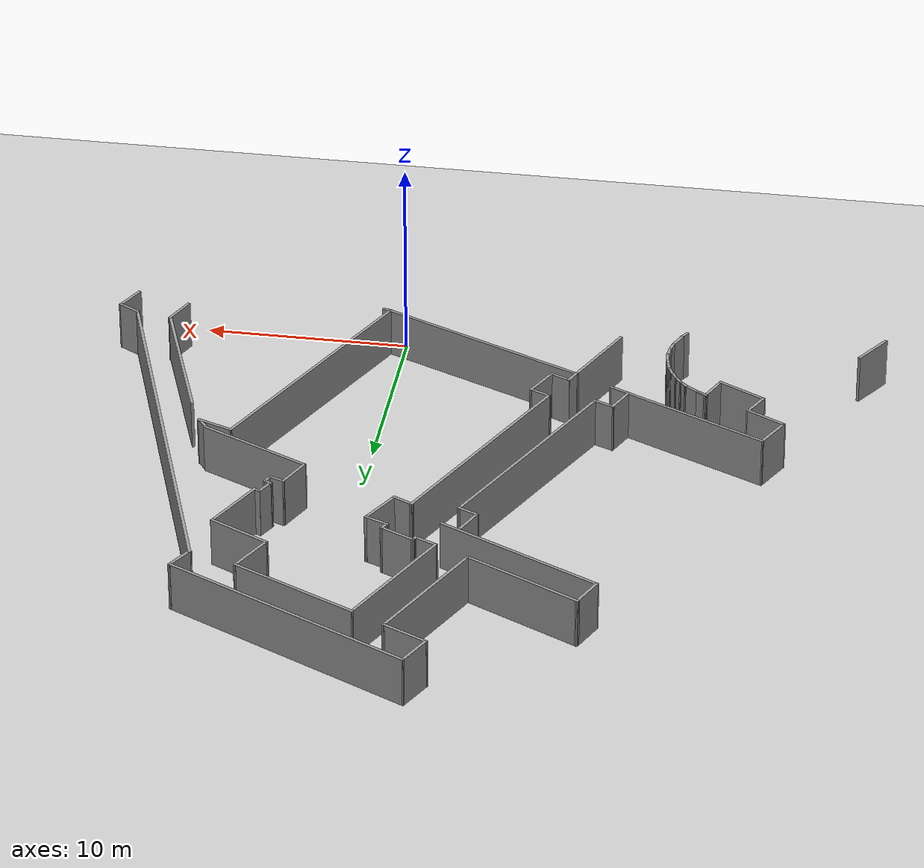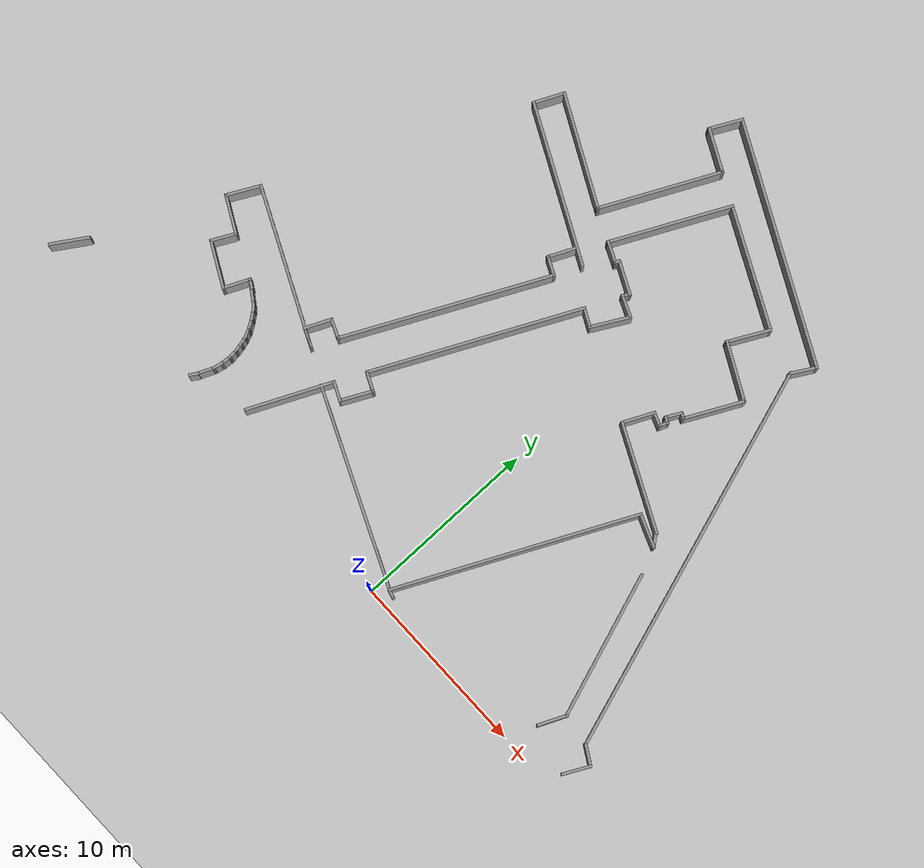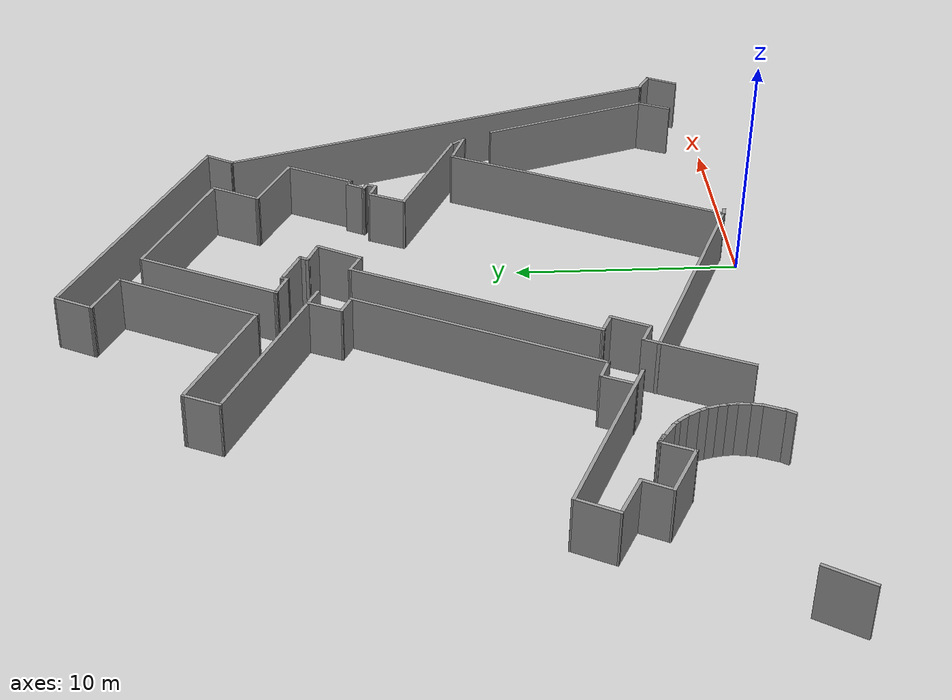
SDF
<sdf version="1.6">
 <world name="default">
  <model name="ground_plane">
   <static>1</static>
   <link name="link">
    <collision name="collision">
     <geometry><plane><normal>0 0 1</normal><size>100 100</size></plane></geometry>
     <surface><friction><ode><mu>100</mu><mu2>50</mu2></ode></friction></surface>
    </collision>
    <visual name="visual">
     <cast_shadows>0</cast_shadows>
     <geometry><plane><normal>0 0 1</normal><size>100 100</size></plane></geometry>
     <material>
      <script><uri>file://media/materials/scripts/gazebo.material</uri><name>Gazebo/Grey</name></script>
     </material>
    </visual>
   </link>
  </model>
  <model name="3rd_floor">
   <pose>-15.2077 -10.9942 0 0 -0 0</pose>
   <link name="Wall_100">
    <collision name="Wall_100_Collision">
     <geometry><box><size>0.976108 0.15 2.5</size></box></geometry>
     <pose>0 0 1.25 0 -0 0</pose>
    </collision>
    <visual name="Wall_100_Visual">
     <pose>0 0 1.25 0 -0 0</pose>
     <geometry><box><size>0.976108 0.15 2.5</size></box></geometry>
     <material>
      <script><uri>file://media/materials/scripts/gazebo.material</uri><name>Gazebo/Grey</name></script>
      <ambient>1 1 1 1</ambient>
     </material>
    </visual>
    <pose>19.0343 28.1609 0 0 0 -2.05279</pose>
   </link>
   <link name="Wall_101">
    <collision name="Wall_101_Collision">
     <geometry><box><size>0.451187 0.15 2.5</size></box></geometry>
     <pose>0 0 1.25 0 -0 0</pose>
    </collision>
    <visual name="Wall_101_Visual">
     <pose>0 0 1.25 0 -0 0</pose>
     <geometry><box><size>0.451187 0.15 2.5</size></box></geometry>
     <material>
      <script><uri>file://media/materials/scripts/gazebo.material</uri><name>Gazebo/Grey</name></script>
      <ambient>1 1 1 1</ambient>
     </material>
    </visual>
    <pose>18.9794 27.7315 0 0 0 -0.434533</pose>
   </link>
   <link name="Wall_102">
    <collision name="Wall_102_Collision">
     <geometry><box><size>0.575251 0.15 2.5</size></box></geometry>
     <pose>0 0 1.25 0 -0 0</pose>
    </collision>
    <visual name="Wall_102_Visual">
     <pose>0 0 1.25 0 -0 0</pose>
     <geometry><box><size>0.575251 0.15 2.5</size></box></geometry>
     <material>
      <script><uri>file://media/materials/scripts/gazebo.material</uri><name>Gazebo/Grey</name></script>
      <ambient>1 1 1 1</ambient>
     </material>
    </visual>
    <pose>19.035 27.4715 0 0 0 -1.9614</pose>
   </link>
   <link name="Wall_103">
    <collision name="Wall_103_Collision">
     <geometry><box><size>0.867422 0.15 2.5</size></box></geometry>
     <pose>0 0 1.25 0 -0 0</pose>
    </collision>
    <visual name="Wall_103_Visual">
     <pose>0 0 1.25 0 -0 0</pose>
     <geometry><box><size>0.867422 0.15 2.5</size></box></geometry>
     <material>
      <script><uri>file://media/materials/scripts/gazebo.material</uri><name>Gazebo/Grey</name></script>
      <ambient>1 1 1 1</ambient>
     </material>
    </visual>
    <pose>18.6187 27.4021 0 0 -0 2.77905</pose>
   </link>
   <link name="Wall_104">
    <collision name="Wall_104_Collision">
     <geometry><box><size>1.83663 0.15 2.5</size></box></geometry>
     <pose>0 0 1.25 0 -0 0</pose>
    </collision>
    <visual name="Wall_104_Visual">
     <pose>0 0 1.25 0 -0 0</pose>
     <geometry><box><size>1.83663 0.15 2.5</size></box></geometry>
     <material>
      <script><uri>file://media/materials/scripts/gazebo.material</uri><name>Gazebo/Grey</name></script>
      <ambient>1 1 1 1</ambient>
     </material>
    </visual>
    <pose>17.9248 26.766 0 0 0 -2.00991</pose>
   </link>
   <link name="Wall_105">
    <collision name="Wall_105_Collision">
     <geometry><box><size>5.97757 0.15 2.5</size></box></geometry>
     <pose>0 0 1.25 0 -0 0</pose>
    </collision>
    <visual name="Wall_105_Visual">
     <pose>0 0 1.25 0 -0 0</pose>
     <geometry><box><size>5.97757 0.15 2.5</size></box></geometry>
     <material>
      <script><uri>file://media/materials/scripts/gazebo.material</uri><name>Gazebo/Grey</name></script>
      <ambient>1 1 1 1</ambient>
     </material>
    </visual>
    <pose>20.1971 24.7502 0 0 0 -0.444326</pose>
   </link>
   <link name="Wall_471">
    <collision name="Wall_471_Collision">
     <geometry><box><size>6.6762 0.15 2.5</size></box></geometry>
     <pose>0 0 1.25 0 -0 0</pose>
    </collision>
    <visual name="Wall_471_Visual">
     <pose>0 0 1.25 0 -0 0</pose>
     <geometry><box><size>6.6762 0.15 2.5</size></box></geometry>
     <material>
      <script><uri>file://media/materials/scripts/gazebo.material</uri><name>Gazebo/Grey</name></script>
      <ambient>1 1 1 1</ambient>
     </material>
    </visual>
    <pose>11.7969 34.5955 0 0 0 -2.02918</pose>
   </link>
   <link name="Wall_472">
    <collision name="Wall_472_Collision">
     <geometry><box><size>1.25496 0.15 2.5</size></box></geometry>
     <pose>0 0 1.25 0 -0 0</pose>
    </collision>
    <visual name="Wall_472_Visual">
     <pose>0 0 1.25 0 -0 0</pose>
     <geometry><box><size>1.25496 0.15 2.5</size></box></geometry>
     <material>
      <script><uri>file://media/materials/scripts/gazebo.material</uri><name>Gazebo/Grey</name></script>
      <ambient>1 1 1 1</ambient>
     </material>
    </visual>
    <pose>10.8587 31.4468 0 0 0 -0.414507</pose>
   </link>
   <link name="Wall_473">
    <collision name="Wall_473_Collision">
     <geometry><box><size>0.36786 0.15 2.5</size></box></geometry>
     <pose>0 0 1.25 0 -0 0</pose>
    </collision>
    <visual name="Wall_473_Visual">
     <pose>0 0 1.25 0 -0 0</pose>
     <geometry><box><size>0.36786 0.15 2.5</size></box></geometry>
     <material>
      <script><uri>file://media/materials/scripts/gazebo.material</uri><name>Gazebo/Grey</name></script>
      <ambient>1 1 1 1</ambient>
     </material>
    </visual>
    <pose>11.4048 31.3254 0 0 -0 1.19029</pose>
   </link>
   <link name="Wall_474">
    <collision name="Wall_474_Collision">
     <geometry><box><size>1.91369 0.15 2.5</size></box></geometry>
     <pose>0 0 1.25 0 -0 0</pose>
    </collision>
    <visual name="Wall_474_Visual">
     <pose>0 0 1.25 0 -0 0</pose>
     <geometry><box><size>1.91369 0.15 2.5</size></box></geometry>
     <material>
      <script><uri>file://media/materials/scripts/gazebo.material</uri><name>Gazebo/Grey</name></script>
      <ambient>1 1 1 1</ambient>
     </material>
    </visual>
    <pose>12.2424 31.0494 0 0 0 -0.441999</pose>
   </link>
   <link name="Wall_475">
    <collision name="Wall_475_Collision">
     <geometry><box><size>0.514278 0.15 2.5</size></box></geometry>
     <pose>0 0 1.25 0 -0 0</pose>
    </collision>
    <visual name="Wall_475_Visual">
     <pose>0 0 1.25 0 -0 0</pose>
     <geometry><box><size>0.514278 0.15 2.5</size></box></geometry>
     <material>
      <script><uri>file://media/materials/scripts/gazebo.material</uri><name>Gazebo/Grey</name></script>
      <ambient>1 1 1 1</ambient>
     </material>
    </visual>
    <pose>12.9501 30.5134 0 0 0 -2.08355</pose>
   </link>
   <link name="Wall_476">
    <collision name="Wall_476_Collision">
     <geometry><box><size>1.29211 0.15 2.5</size></box></geometry>
     <pose>0 0 1.25 0 -0 0</pose>
    </collision>
    <visual name="Wall_476_Visual">
     <pose>0 0 1.25 0 -0 0</pose>
     <geometry><box><size>1.29211 0.15 2.5</size></box></geometry>
     <material>
      <script><uri>file://media/materials/scripts/gazebo.material</uri><name>Gazebo/Grey</name></script>
      <ambient>1 1 1 1</ambient>
     </material>
    </visual>
    <pose>13.3767 30.1322 0 0 0 -0.400241</pose>
   </link>
   <link name="Wall_477">
    <collision name="Wall_477_Collision">
     <geometry><box><size>2.25026 0.15 2.5</size></box></geometry>
     <pose>0 0 1.25 0 -0 0</pose>
    </collision>
    <visual name="Wall_477_Visual">
     <pose>0 0 1.25 0 -0 0</pose>
     <geometry><box><size>2.25026 0.15 2.5</size></box></geometry>
     <material>
      <script><uri>file://media/materials/scripts/gazebo.material</uri><name>Gazebo/Grey</name></script>
      <ambient>1 1 1 1</ambient>
     </material>
    </visual>
    <pose>13.4071 28.9892 0 0 0 -2.07298</pose>
   </link>
   <link name="Wall_478">
    <collision name="Wall_478_Collision">
     <geometry><box><size>1.14508 0.15 2.5</size></box></geometry>
     <pose>0 0 1.25 0 -0 0</pose>
    </collision>
    <visual name="Wall_478_Visual">
     <pose>0 0 1.25 0 -0 0</pose>
     <geometry><box><size>1.14508 0.15 2.5</size></box></geometry>
     <material>
      <script><uri>file://media/materials/scripts/gazebo.material</uri><name>Gazebo/Grey</name></script>
      <ambient>1 1 1 1</ambient>
     </material>
    </visual>
    <pose>12.4566 28.2913 0 0 -0 2.67794</pose>
   </link>
   <link name="Wall_480">
    <collision name="Wall_480_Collision">
     <geometry><box><size>11.58 0.15 2.5</size></box></geometry>
     <pose>0 0 1.25 0 -0 0</pose>
    </collision>
    <visual name="Wall_480_Visual">
     <pose>0 0 1.25 0 -0 0</pose>
     <geometry><box><size>11.58 0.15 2.5</size></box></geometry>
     <material>
      <script><uri>file://media/materials/scripts/gazebo.material</uri><name>Gazebo/Grey</name></script>
      <ambient>1 1 1 1</ambient>
     </material>
    </visual>
    <pose>9.50935 23.3757 0 0 0 -2.024</pose>
   </link>
   <link name="Wall_481">
    <collision name="Wall_481_Collision">
     <geometry><box><size>1.15737 0.15 2.5</size></box></geometry>
     <pose>0 0 1.25 0 -0 0</pose>
    </collision>
    <visual name="Wall_481_Visual">
     <pose>0 0 1.25 0 -0 0</pose>
     <geometry><box><size>1.15737 0.15 2.5</size></box></geometry>
     <material>
      <script><uri>file://media/materials/scripts/gazebo.material</uri><name>Gazebo/Grey</name></script>
      <ambient>1 1 1 1</ambient>
     </material>
    </visual>
    <pose>7.46438 18.0266 0 0 0 -0.432408</pose>
   </link>
   <link name="Wall_482">
    <collision name="Wall_482_Collision">
     <geometry><box><size>1.88057 0.15 2.5</size></box></geometry>
     <pose>0 0 1.25 0 -0 0</pose>
    </collision>
    <visual name="Wall_482_Visual">
     <pose>0 0 1.25 0 -0 0</pose>
     <geometry><box><size>1.88057 0.15 2.5</size></box></geometry>
     <material>
      <script><uri>file://media/materials/scripts/gazebo.material</uri><name>Gazebo/Grey</name></script>
      <ambient>1 1 1 1</ambient>
     </material>
    </visual>
    <pose>7.53474 17.0416 0 0 0 -2.03444</pose>
   </link>
   <link name="Wall_483">
    <collision name="Wall_483_Collision">
     <geometry><box><size>1.1299 0.15 2.5</size></box></geometry>
     <pose>0 0 1.25 0 -0 0</pose>
    </collision>
    <visual name="Wall_483_Visual">
     <pose>0 0 1.25 0 -0 0</pose>
     <geometry><box><size>1.1299 0.15 2.5</size></box></geometry>
     <material>
      <script><uri>file://media/materials/scripts/gazebo.material</uri><name>Gazebo/Grey</name></script>
      <ambient>1 1 1 1</ambient>
     </material>
    </visual>
    <pose>6.70329 16.4738 0 0 -0 2.70736</pose>
   </link>
   <link name="Wall_485">
    <collision name="Wall_485_Collision">
     <geometry><box><size>4.80153 0.15 2.5</size></box></geometry>
     <pose>0 0 1.25 0 -0 0</pose>
    </collision>
    <visual name="Wall_485_Visual">
     <pose>0 0 1.25 0 -0 0</pose>
     <geometry><box><size>4.80153 0.15 2.5</size></box></geometry>
     <material>
      <script><uri>file://media/materials/scripts/gazebo.material</uri><name>Gazebo/Grey</name></script>
      <ambient>1 1 1 1</ambient>
     </material>
    </visual>
    <pose>5.26754 14.5719 0 0 0 -2.00697</pose>
   </link>
   <link name="Wall_487">
    <collision name="Wall_487_Collision">
     <geometry><box><size>10.9993 0.15 2.5</size></box></geometry>
     <pose>0 0 1.25 0 -0 0</pose>
    </collision>
    <visual name="Wall_487_Visual">
     <pose>0 0 1.25 0 -0 0</pose>
     <geometry><box><size>10.9993 0.15 2.5</size></box></geometry>
     <material>
      <script><uri>file://media/materials/scripts/gazebo.material</uri><name>Gazebo/Grey</name></script>
      <ambient>1 1 1 1</ambient>
     </material>
    </visual>
    <pose>10.9112 13.8828 0 0 0 -0.416814</pose>
   </link>
   <link name="Wall_489">
    <collision name="Wall_489_Collision">
     <geometry><box><size>13.3258 0.15 2.5</size></box></geometry>
     <pose>0 0 1.25 0 -0 0</pose>
    </collision>
    <visual name="Wall_489_Visual">
     <pose>0 0 1.25 0 -0 0</pose>
     <geometry><box><size>13.3258 0.15 2.5</size></box></geometry>
     <material>
      <script><uri>file://media/materials/scripts/gazebo.material</uri><name>Gazebo/Grey</name></script>
      <ambient>1 1 1 1</ambient>
     </material>
    </visual>
    <pose>18.7301 17.6221 0 0 -0 1.12195</pose>
   </link>
   <link name="Wall_490">
    <collision name="Wall_490_Collision">
     <geometry><box><size>1.92051 0.15 2.5</size></box></geometry>
     <pose>0 0 1.25 0 -0 0</pose>
    </collision>
    <visual name="Wall_490_Visual">
     <pose>0 0 1.25 0 -0 0</pose>
     <geometry><box><size>1.92051 0.15 2.5</size></box></geometry>
     <material>
      <script><uri>file://media/materials/scripts/gazebo.material</uri><name>Gazebo/Grey</name></script>
      <ambient>1 1 1 1</ambient>
     </material>
    </visual>
    <pose>22.4155 23.2408 0 0 0 -0.365747</pose>
   </link>
   <link name="Wall_491">
    <collision name="Wall_491_Collision">
     <geometry><box><size>0.77634 0.15 2.5</size></box></geometry>
     <pose>0 0 1.25 0 -0 0</pose>
    </collision>
    <visual name="Wall_491_Visual">
     <pose>0 0 1.25 0 -0 0</pose>
     <geometry><box><size>0.77634 0.15 2.5</size></box></geometry>
     <material>
      <script><uri>file://media/materials/scripts/gazebo.material</uri><name>Gazebo/Grey</name></script>
      <ambient>1 1 1 1</ambient>
     </material>
    </visual>
    <pose>23.0487 23.1705 0 0 -0 2.23677</pose>
   </link>
   <link name="Wall_493">
    <collision name="Wall_493_Collision">
     <geometry><box><size>8.12179 0.15 2.5</size></box></geometry>
     <pose>0 0 1.25 0 -0 0</pose>
    </collision>
    <visual name="Wall_493_Visual">
     <pose>0 0 1.25 0 -0 0</pose>
     <geometry><box><size>8.12179 0.15 2.5</size></box></geometry>
     <material>
      <script><uri>file://media/materials/scripts/gazebo.material</uri><name>Gazebo/Grey</name></script>
      <ambient>1 1 1 1</ambient>
     </material>
    </visual>
    <pose>25.2037 17.7554 0 0 0 -1.23448</pose>
   </link>
   <link name="Wall_494">
    <collision name="Wall_494_Collision">
     <geometry><box><size>1.65639 0.15 2.5</size></box></geometry>
     <pose>0 0 1.25 0 -0 0</pose>
    </collision>
    <visual name="Wall_494_Visual">
     <pose>0 0 1.25 0 -0 0</pose>
     <geometry><box><size>1.65639 0.15 2.5</size></box></geometry>
     <material>
      <script><uri>file://media/materials/scripts/gazebo.material</uri><name>Gazebo/Grey</name></script>
      <ambient>1 1 1 1</ambient>
     </material>
    </visual>
    <pose>26.2131 13.3045 0 0 0 -1.98902</pose>
   </link>
   <link name="Wall_498">
    <collision name="Wall_498_Collision">
     <geometry><box><size>0.5 0.15 2.5</size></box></geometry>
     <pose>0 0 1.25 0 -0 0</pose>
    </collision>
    <visual name="Wall_498_Visual">
     <pose>0 0 1.25 0 -0 0</pose>
     <geometry><box><size>0.5 0.15 2.5</size></box></geometry>
     <material>
      <script><uri>file://media/materials/scripts/gazebo.material</uri><name>Gazebo/Grey</name></script>
      <ambient>1 1 1 1</ambient>
     </material>
    </visual>
    <pose>16.0404 11.6282 0 0 0 -0.261799</pose>
   </link>
   <link name="Wall_5">
    <collision name="Wall_5_Collision">
     <geometry><box><size>13.2713 0.15 2.5</size></box></geometry>
     <pose>0 0 1.25 0 -0 0</pose>
    </collision>
    <visual name="Wall_5_Visual">
     <pose>0 0 1.25 0 -0 0</pose>
     <geometry><box><size>13.2713 0.15 2.5</size></box></geometry>
     <material>
      <script><uri>file://media/materials/scripts/gazebo.material</uri><name>Gazebo/Grey</name></script>
      <ambient>1 1 1 1</ambient>
     </material>
    </visual>
    <pose>16.2399 37.9944 0 0 0 -0.455255</pose>
   </link>
   <link name="Wall_556">
    <collision name="Wall_556_Collision">
     <geometry><box><size>0.583143 0.15 2.5</size></box></geometry>
     <pose>0 0 1.25 0 -0 0</pose>
    </collision>
    <visual name="Wall_556_Visual">
     <pose>0 0 1.25 0 -0 0</pose>
     <geometry><box><size>0.583143 0.15 2.5</size></box></geometry>
     <material>
      <script><uri>file://media/materials/scripts/gazebo.material</uri><name>Gazebo/Grey</name></script>
      <ambient>1 1 1 1</ambient>
     </material>
    </visual>
    <pose>-0.260611 16.9448 0 0 -0 2.63587</pose>
   </link>
   <link name="Wall_557">
    <collision name="Wall_557_Collision">
     <geometry><box><size>1.39544 0.15 2.5</size></box></geometry>
     <pose>0 0 1.25 0 -0 0</pose>
    </collision>
    <visual name="Wall_557_Visual">
     <pose>0 0 1.25 0 -0 0</pose>
     <geometry><box><size>1.39544 0.15 2.5</size></box></geometry>
     <material>
      <script><uri>file://media/materials/scripts/gazebo.material</uri><name>Gazebo/Grey</name></script>
      <ambient>1 1 1 1</ambient>
     </material>
    </visual>
    <pose>0.064531 16.6991 0 0 0 -0.598149</pose>
   </link>
   <link name="Wall_558">
    <collision name="Wall_558_Collision">
     <geometry><box><size>0.5 0.15 2.5</size></box></geometry>
     <pose>0 0 1.25 0 -0 0</pose>
    </collision>
    <visual name="Wall_558_Visual">
     <pose>0 0 1.25 0 -0 0</pose>
     <geometry><box><size>0.5 0.15 2.5</size></box></geometry>
     <material>
      <script><uri>file://media/materials/scripts/gazebo.material</uri><name>Gazebo/Grey</name></script>
      <ambient>1 1 1 1</ambient>
     </material>
    </visual>
    <pose>0.702878 16.2247 0 0 0 -0.785398</pose>
   </link>
   <link name="Wall_559">
    <collision name="Wall_559_Collision">
     <geometry><box><size>0.594545 0.15 2.5</size></box></geometry>
     <pose>0 0 1.25 0 -0 0</pose>
    </collision>
    <visual name="Wall_559_Visual">
     <pose>0 0 1.25 0 -0 0</pose>
     <geometry><box><size>0.594545 0.15 2.5</size></box></geometry>
     <material>
      <script><uri>file://media/materials/scripts/gazebo.material</uri><name>Gazebo/Grey</name></script>
      <ambient>1 1 1 1</ambient>
     </material>
    </visual>
    <pose>0.963748 15.926 0 0 0 -0.905965</pose>
   </link>
   <link name="Wall_560">
    <collision name="Wall_560_Collision">
     <geometry><box><size>0.727102 0.15 2.5</size></box></geometry>
     <pose>0 0 1.25 0 -0 0</pose>
    </collision>
    <visual name="Wall_560_Visual">
     <pose>0 0 1.25 0 -0 0</pose>
     <geometry><box><size>0.727102 0.15 2.5</size></box></geometry>
     <material>
      <script><uri>file://media/materials/scripts/gazebo.material</uri><name>Gazebo/Grey</name></script>
      <ambient>1 1 1 1</ambient>
     </material>
    </visual>
    <pose>1.2521 15.5053 0 0 0 -1.01914</pose>
   </link>
   <link name="Wall_561">
    <collision name="Wall_561_Collision">
     <geometry><box><size>0.569983 0.15 2.5</size></box></geometry>
     <pose>0 0 1.25 0 -0 0</pose>
    </collision>
    <visual name="Wall_561_Visual">
     <pose>0 0 1.25 0 -0 0</pose>
     <geometry><box><size>0.569983 0.15 2.5</size></box></geometry>
     <material>
      <script><uri>file://media/materials/scripts/gazebo.material</uri><name>Gazebo/Grey</name></script>
      <ambient>1 1 1 1</ambient>
     </material>
    </visual>
    <pose>1.48651 15.0667 0 0 0 -1.16354</pose>
   </link>
   <link name="Wall_562">
    <collision name="Wall_562_Collision">
     <geometry><box><size>0.559227 0.15 2.5</size></box></geometry>
     <pose>0 0 1.25 0 -0 0</pose>
    </collision>
    <visual name="Wall_562_Visual">
     <pose>0 0 1.25 0 -0 0</pose>
     <geometry><box><size>0.559227 0.15 2.5</size></box></geometry>
     <material>
      <script><uri>file://media/materials/scripts/gazebo.material</uri><name>Gazebo/Grey</name></script>
      <ambient>1 1 1 1</ambient>
     </material>
    </visual>
    <pose>1.62639 14.6773 0 0 0 -1.28996</pose>
   </link>
   <link name="Wall_564">
    <collision name="Wall_564_Collision">
     <geometry><box><size>0.561716 0.15 2.5</size></box></geometry>
     <pose>0 0 1.25 0 -0 0</pose>
    </collision>
    <visual name="Wall_564_Visual">
     <pose>0 0 1.25 0 -0 0</pose>
     <geometry><box><size>0.561716 0.15 2.5</size></box></geometry>
     <material>
      <script><uri>file://media/materials/scripts/gazebo.material</uri><name>Gazebo/Grey</name></script>
      <ambient>1 1 1 1</ambient>
     </material>
    </visual>
    <pose>1.7182 14.2779 0 0 0 -1.39948</pose>
   </link>
   <link name="Wall_565">
    <collision name="Wall_565_Collision">
     <geometry><box><size>0.5719 0.15 2.5</size></box></geometry>
     <pose>0 0 1.25 0 -0 0</pose>
    </collision>
    <visual name="Wall_565_Visual">
     <pose>0 0 1.25 0 -0 0</pose>
     <geometry><box><size>0.5719 0.15 2.5</size></box></geometry>
     <material>
      <script><uri>file://media/materials/scripts/gazebo.material</uri><name>Gazebo/Grey</name></script>
      <ambient>1 1 1 1</ambient>
     </material>
    </visual>
    <pose>1.77329 13.865 0 0 0 -1.47585</pose>
   </link>
   <link name="Wall_566">
    <collision name="Wall_566_Collision">
     <geometry><box><size>0.672398 0.15 2.5</size></box></geometry>
     <pose>0 0 1.25 0 -0 0</pose>
    </collision>
    <visual name="Wall_566_Visual">
     <pose>0 0 1.25 0 -0 0</pose>
     <geometry><box><size>0.672398 0.15 2.5</size></box></geometry>
     <material>
      <script><uri>file://media/materials/scripts/gazebo.material</uri><name>Gazebo/Grey</name></script>
      <ambient>1 1 1 1</ambient>
     </material>
    </visual>
    <pose>1.76829 13.395 0 0 0 -1.66665</pose>
   </link>
   <link name="Wall_567">
    <collision name="Wall_567_Collision">
     <geometry><box><size>0.610977 0.15 2.5</size></box></geometry>
     <pose>0 0 1.25 0 -0 0</pose>
    </collision>
    <visual name="Wall_567_Visual">
     <pose>0 0 1.25 0 -0 0</pose>
     <geometry><box><size>0.610977 0.15 2.5</size></box></geometry>
     <material>
      <script><uri>file://media/materials/scripts/gazebo.material</uri><name>Gazebo/Grey</name></script>
      <ambient>1 1 1 1</ambient>
     </material>
    </visual>
    <pose>1.69329 12.91 0 0 0 -1.78947</pose>
   </link>
   <link name="Wall_568">
    <collision name="Wall_568_Collision">
     <geometry><box><size>0.982586 0.15 2.5</size></box></geometry>
     <pose>0 0 1.25 0 -0 0</pose>
    </collision>
    <visual name="Wall_568_Visual">
     <pose>0 0 1.25 0 -0 0</pose>
     <geometry><box><size>0.982586 0.15 2.5</size></box></geometry>
     <material>
      <script><uri>file://media/materials/scripts/gazebo.material</uri><name>Gazebo/Grey</name></script>
      <ambient>1 1 1 1</ambient>
     </material>
    </visual>
    <pose>1.47329 12.305 0 0 0 -1.99146</pose>
   </link>
   <link name="Wall_57">
    <collision name="Wall_57_Collision">
     <geometry><box><size>1.88222 0.15 2.5</size></box></geometry>
     <pose>0 0 1.25 0 -0 0</pose>
    </collision>
    <visual name="Wall_57_Visual">
     <pose>0 0 1.25 0 -0 0</pose>
     <geometry><box><size>1.88222 0.15 2.5</size></box></geometry>
     <material>
      <script><uri>file://media/materials/scripts/gazebo.material</uri><name>Gazebo/Grey</name></script>
      <ambient>1 1 1 1</ambient>
     </material>
    </visual>
    <pose>9.95267 40.1081 0 0 0 -2.04403</pose>
   </link>
   <link name="Wall_570">
    <collision name="Wall_570_Collision">
     <geometry><box><size>0.519028 0.15 2.5</size></box></geometry>
     <pose>0 0 1.25 0 -0 0</pose>
    </collision>
    <visual name="Wall_570_Visual">
     <pose>0 0 1.25 0 -0 0</pose>
     <geometry><box><size>0.519028 0.15 2.5</size></box></geometry>
     <material>
      <script><uri>file://media/materials/scripts/gazebo.material</uri><name>Gazebo/Grey</name></script>
      <ambient>1 1 1 1</ambient>
     </material>
    </visual>
    <pose>1.20117 11.7283 0 0 0 -2.17187</pose>
   </link>
   <link name="Wall_58">
    <collision name="Wall_58_Collision">
     <geometry><box><size>2.45289 0.15 2.5</size></box></geometry>
     <pose>0 0 1.25 0 -0 0</pose>
    </collision>
    <visual name="Wall_58_Visual">
     <pose>0 0 1.25 0 -0 0</pose>
     <geometry><box><size>2.45289 0.15 2.5</size></box></geometry>
     <material>
      <script><uri>file://media/materials/scripts/gazebo.material</uri><name>Gazebo/Grey</name></script>
      <ambient>1 1 1 1</ambient>
     </material>
    </visual>
    <pose>10.5938 38.8344 0 0 0 -0.451929</pose>
   </link>
   <link name="Wall_59">
    <collision name="Wall_59_Collision">
     <geometry><box><size>6.71655 0.15 2.5</size></box></geometry>
     <pose>0 0 1.25 0 -0 0</pose>
    </collision>
    <visual name="Wall_59_Visual">
     <pose>0 0 1.25 0 -0 0</pose>
     <geometry><box><size>6.71655 0.15 2.5</size></box></geometry>
     <material>
      <script><uri>file://media/materials/scripts/gazebo.material</uri><name>Gazebo/Grey</name></script>
      <ambient>1 1 1 1</ambient>
     </material>
    </visual>
    <pose>10.1814 35.3849 0 0 0 -2.02759</pose>
   </link>
   <link name="Wall_6">
    <collision name="Wall_6_Collision">
     <geometry><box><size>1.5 0.15 2.5</size></box></geometry>
     <pose>0 0 1.25 0 -0 0</pose>
    </collision>
    <visual name="Wall_6_Visual">
     <pose>0 0 1.25 0 -0 0</pose>
     <geometry><box><size>1.5 0.15 2.5</size></box></geometry>
     <material>
      <script><uri>file://media/materials/scripts/gazebo.material</uri><name>Gazebo/Grey</name></script>
      <ambient>1 1 1 1</ambient>
     </material>
    </visual>
    <pose>21.7948 34.5252 0 0 0 -2.0944</pose>
   </link>
   <link name="Wall_60">
    <collision name="Wall_60_Collision">
     <geometry><box><size>6.23966 0.15 2.5</size></box></geometry>
     <pose>0 0 1.25 0 -0 0</pose>
    </collision>
    <visual name="Wall_60_Visual">
     <pose>0 0 1.25 0 -0 0</pose>
     <geometry><box><size>6.23966 0.15 2.5</size></box></geometry>
     <material>
      <script><uri>file://media/materials/scripts/gazebo.material</uri><name>Gazebo/Grey</name></script>
      <ambient>1 1 1 1</ambient>
     </material>
    </visual>
    <pose>6.00788 33.7959 0 0 -0 2.67942</pose>
   </link>
   <link name="Wall_61">
    <collision name="Wall_61_Collision">
     <geometry><box><size>1.76974 0.15 2.5</size></box></geometry>
     <pose>0 0 1.25 0 -0 0</pose>
    </collision>
    <visual name="Wall_61_Visual">
     <pose>0 0 1.25 0 -0 0</pose>
     <geometry><box><size>1.76974 0.15 2.5</size></box></geometry>
     <material>
      <script><uri>file://media/materials/scripts/gazebo.material</uri><name>Gazebo/Grey</name></script>
      <ambient>1 1 1 1</ambient>
     </material>
    </visual>
    <pose>2.94056 34.4194 0 0 0 -2.00667</pose>
   </link>
   <link name="Wall_63">
    <collision name="Wall_63_Collision">
     <geometry><box><size>8.76598 0.15 2.5</size></box></geometry>
     <pose>0 0 1.25 0 -0 0</pose>
    </collision>
    <visual name="Wall_63_Visual">
     <pose>0 0 1.25 0 -0 0</pose>
     <geometry><box><size>8.76598 0.15 2.5</size></box></geometry>
     <material>
      <script><uri>file://media/materials/scripts/gazebo.material</uri><name>Gazebo/Grey</name></script>
      <ambient>1 1 1 1</ambient>
     </material>
    </visual>
    <pose>6.47012 31.7958 0 0 0 -0.454051</pose>
   </link>
   <link name="Wall_65">
    <collision name="Wall_65_Collision">
     <geometry><box><size>1.66105 0.15 2.5</size></box></geometry>
     <pose>0 0 1.25 0 -0 0</pose>
    </collision>
    <visual name="Wall_65_Visual">
     <pose>0 0 1.25 0 -0 0</pose>
     <geometry><box><size>1.66105 0.15 2.5</size></box></geometry>
     <material>
      <script><uri>file://media/materials/scripts/gazebo.material</uri><name>Gazebo/Grey</name></script>
      <ambient>1 1 1 1</ambient>
     </material>
    </visual>
    <pose>9.18072 29.6072 0 0 0 -2.0032</pose>
   </link>
   <link name="Wall_66">
    <collision name="Wall_66_Collision">
     <geometry><box><size>1.12554 0.15 2.5</size></box></geometry>
     <pose>0 0 1.25 0 -0 0</pose>
    </collision>
    <visual name="Wall_66_Visual">
     <pose>0 0 1.25 0 -0 0</pose>
     <geometry><box><size>1.12554 0.15 2.5</size></box></geometry>
     <material>
      <script><uri>file://media/materials/scripts/gazebo.material</uri><name>Gazebo/Grey</name></script>
      <ambient>1 1 1 1</ambient>
     </material>
    </visual>
    <pose>9.30384 28.7102 0 0 0 -0.44752</pose>
   </link>
   <link name="Wall_67">
    <collision name="Wall_67_Collision">
     <geometry><box><size>11.4776 0.15 2.5</size></box></geometry>
     <pose>0 0 1.25 0 -0 0</pose>
    </collision>
    <visual name="Wall_67_Visual">
     <pose>0 0 1.25 0 -0 0</pose>
     <geometry><box><size>11.4776 0.15 2.5</size></box></geometry>
     <material>
      <script><uri>file://media/materials/scripts/gazebo.material</uri><name>Gazebo/Grey</name></script>
      <ambient>1 1 1 1</ambient>
     </material>
    </visual>
    <pose>7.24589 23.4158 0 0 0 -2.0275</pose>
   </link>
   <link name="Wall_68">
    <collision name="Wall_68_Collision">
     <geometry><box><size>1.14314 0.15 2.5</size></box></geometry>
     <pose>0 0 1.25 0 -0 0</pose>
    </collision>
    <visual name="Wall_68_Visual">
     <pose>0 0 1.25 0 -0 0</pose>
     <geometry><box><size>1.14314 0.15 2.5</size></box></geometry>
     <material>
      <script><uri>file://media/materials/scripts/gazebo.material</uri><name>Gazebo/Grey</name></script>
      <ambient>1 1 1 1</ambient>
     </material>
    </visual>
    <pose>4.29087 18.5259 0 0 -0 2.74135</pose>
   </link>
   <link name="Wall_69">
    <collision name="Wall_69_Collision">
     <geometry><box><size>1.58243 0.15 2.5</size></box></geometry>
     <pose>0 0 1.25 0 -0 0</pose>
    </collision>
    <visual name="Wall_69_Visual">
     <pose>0 0 1.25 0 -0 0</pose>
     <geometry><box><size>1.58243 0.15 2.5</size></box></geometry>
     <material>
      <script><uri>file://media/materials/scripts/gazebo.material</uri><name>Gazebo/Grey</name></script>
      <ambient>1 1 1 1</ambient>
     </material>
    </visual>
    <pose>3.53453 18.0686 0 0 0 -2.00149</pose>
   </link>
   <link name="Wall_7">
    <collision name="Wall_7_Collision">
     <geometry><box><size>21.4935 0.15 2.5</size></box></geometry>
     <pose>0 0 1.25 0 -0 0</pose>
    </collision>
    <visual name="Wall_7_Visual">
     <pose>0 0 1.25 0 -0 0</pose>
     <geometry><box><size>21.4935 0.15 2.5</size></box></geometry>
     <material>
      <script><uri>file://media/materials/scripts/gazebo.material</uri><name>Gazebo/Grey</name></script>
      <ambient>1 1 1 1</ambient>
     </material>
    </visual>
    <pose>24.8481 23.8219 0 0 0 -1.24745</pose>
   </link>
   <link name="Wall_70">
    <collision name="Wall_70_Collision">
     <geometry><box><size>1.11084 0.15 2.5</size></box></geometry>
     <pose>0 0 1.25 0 -0 0</pose>
    </collision>
    <visual name="Wall_70_Visual">
     <pose>0 0 1.25 0 -0 0</pose>
     <geometry><box><size>1.11084 0.15 2.5</size></box></geometry>
     <material>
      <script><uri>file://media/materials/scripts/gazebo.material</uri><name>Gazebo/Grey</name></script>
      <ambient>1 1 1 1</ambient>
     </material>
    </visual>
    <pose>3.67524 17.2243 0 0 0 -0.414507</pose>
   </link>
   <link name="Wall_71">
    <collision name="Wall_71_Collision">
     <geometry><box><size>8.6637 0.15 2.5</size></box></geometry>
     <pose>0 0 1.25 0 -0 0</pose>
    </collision>
    <visual name="Wall_71_Visual">
     <pose>0 0 1.25 0 -0 0</pose>
     <geometry><box><size>8.6637 0.15 2.5</size></box></geometry>
     <material>
      <script><uri>file://media/materials/scripts/gazebo.material</uri><name>Gazebo/Grey</name></script>
      <ambient>1 1 1 1</ambient>
     </material>
    </visual>
    <pose>0.262902 18.8425 0 0 -0 2.70197</pose>
   </link>
   <link name="Wall_72">
    <collision name="Wall_72_Collision">
     <geometry><box><size>1.97523 0.15 2.5</size></box></geometry>
     <pose>0 0 1.25 0 -0 0</pose>
    </collision>
    <visual name="Wall_72_Visual">
     <pose>0 0 1.25 0 -0 0</pose>
     <geometry><box><size>1.97523 0.15 2.5</size></box></geometry>
     <material>
      <script><uri>file://media/materials/scripts/gazebo.material</uri><name>Gazebo/Grey</name></script>
      <ambient>1 1 1 1</ambient>
     </material>
    </visual>
    <pose>-4.01132 19.8451 0 0 0 -2.05168</pose>
   </link>
   <link name="Wall_73">
    <collision name="Wall_73_Collision">
     <geometry><box><size>2.18003 0.15 2.5</size></box></geometry>
     <pose>0 0 1.25 0 -0 0</pose>
    </collision>
    <visual name="Wall_73_Visual">
     <pose>0 0 1.25 0 -0 0</pose>
     <geometry><box><size>2.18003 0.15 2.5</size></box></geometry>
     <material>
      <script><uri>file://media/materials/scripts/gazebo.material</uri><name>Gazebo/Grey</name></script>
      <ambient>1 1 1 1</ambient>
     </material>
    </visual>
    <pose>-3.5364 18.5611 0 0 0 -0.486899</pose>
   </link>
   <link name="Wall_74">
    <collision name="Wall_74_Collision">
     <geometry><box><size>1.45589 0.15 2.5</size></box></geometry>
     <pose>0 0 1.25 0 -0 0</pose>
    </collision>
    <visual name="Wall_74_Visual">
     <pose>0 0 1.25 0 -0 0</pose>
     <geometry><box><size>1.45589 0.15 2.5</size></box></geometry>
     <material>
      <script><uri>file://media/materials/scripts/gazebo.material</uri><name>Gazebo/Grey</name></script>
      <ambient>1 1 1 1</ambient>
     </material>
    </visual>
    <pose>-2.93837 17.5057 0 0 0 -2.04649</pose>
   </link>
   <link name="Wall_75">
    <collision name="Wall_75_Collision">
     <geometry><box><size>2.63583 0.15 2.5</size></box></geometry>
     <pose>0 0 1.25 0 -0 0</pose>
    </collision>
    <visual name="Wall_75_Visual">
     <pose>0 0 1.25 0 -0 0</pose>
     <geometry><box><size>2.63583 0.15 2.5</size></box></geometry>
     <material>
      <script><uri>file://media/materials/scripts/gazebo.material</uri><name>Gazebo/Grey</name></script>
      <ambient>1 1 1 1</ambient>
     </material>
    </visual>
    <pose>-2.13799 16.3455 0 0 0 -0.485317</pose>
   </link>
   <link name="Wall_76">
    <collision name="Wall_76_Collision">
     <geometry><box><size>1.56251 0.15 2.5</size></box></geometry>
     <pose>0 0 1.25 0 -0 0</pose>
    </collision>
    <visual name="Wall_76_Visual">
     <pose>0 0 1.25 0 -0 0</pose>
     <geometry><box><size>1.56251 0.15 2.5</size></box></geometry>
     <material>
      <script><uri>file://media/materials/scripts/gazebo.material</uri><name>Gazebo/Grey</name></script>
      <ambient>1 1 1 1</ambient>
     </material>
    </visual>
    <pose>-0.744337 16.4077 0 0 -0 1.14103</pose>
   </link>
   <link name="Wall_79">
    <collision name="Wall_79_Collision">
     <geometry><box><size>2.16012 0.15 2.5</size></box></geometry>
     <pose>0 0 1.25 0 -0 0</pose>
    </collision>
    <visual name="Wall_79_Visual">
     <pose>0 0 1.25 0 -0 0</pose>
     <geometry><box><size>2.16012 0.15 2.5</size></box></geometry>
     <material>
      <script><uri>file://media/materials/scripts/gazebo.material</uri><name>Gazebo/Grey</name></script>
      <ambient>1 1 1 1</ambient>
     </material>
    </visual>
    <pose>-8.05243 11.6377 0 0 0 -2.14424</pose>
   </link>
   <link name="Wall_8">
    <collision name="Wall_8_Collision">
     <geometry><box><size>1.25 0.15 2.5</size></box></geometry>
     <pose>0 0 1.25 0 -0 0</pose>
    </collision>
    <visual name="Wall_8_Visual">
     <pose>0 0 1.25 0 -0 0</pose>
     <geometry><box><size>1.25 0.15 2.5</size></box></geometry>
     <material>
      <script><uri>file://media/materials/scripts/gazebo.material</uri><name>Gazebo/Grey</name></script>
      <ambient>1 1 1 1</ambient>
     </material>
    </visual>
    <pose>28.7153 13.4281 0 0 0 -0.523599</pose>
   </link>
   <link name="Wall_9">
    <collision name="Wall_9_Collision">
     <geometry><box><size>1.5824 0.15 2.5</size></box></geometry>
     <pose>0 0 1.25 0 -0 0</pose>
    </collision>
    <visual name="Wall_9_Visual">
     <pose>0 0 1.25 0 -0 0</pose>
     <geometry><box><size>1.5824 0.15 2.5</size></box></geometry>
     <material>
      <script><uri>file://media/materials/scripts/gazebo.material</uri><name>Gazebo/Grey</name></script>
      <ambient>1 1 1 1</ambient>
     </material>
    </visual>
    <pose>28.8691 12.5136 0 0 0 -2.03788</pose>
   </link>
   <link name="Wall_95">
    <collision name="Wall_95_Collision">
     <geometry><box><size>6.71946 0.15 2.5</size></box></geometry>
     <pose>0 0 1.25 0 -0 0</pose>
    </collision>
    <visual name="Wall_95_Visual">
     <pose>0 0 1.25 0 -0 0</pose>
     <geometry><box><size>6.71946 0.15 2.5</size></box></geometry>
     <material>
      <script><uri>file://media/materials/scripts/gazebo.material</uri><name>Gazebo/Grey</name></script>
      <ambient>1 1 1 1</ambient>
     </material>
    </visual>
    <pose>16.2015 36.0992 0 0 0 -0.447901</pose>
   </link>
   <link name="Wall_96">
    <collision name="Wall_96_Collision">
     <geometry><box><size>2.41562 0.15 2.5</size></box></geometry>
     <pose>0 0 1.25 0 -0 0</pose>
    </collision>
    <visual name="Wall_96_Visual">
     <pose>0 0 1.25 0 -0 0</pose>
     <geometry><box><size>2.41562 0.15 2.5</size></box></geometry>
     <material>
      <script><uri>file://media/materials/scripts/gazebo.material</uri><name>Gazebo/Grey</name></script>
      <ambient>1 1 1 1</ambient>
     </material>
    </visual>
    <pose>18.6418 33.6705 0 0 0 -2.04814</pose>
   </link>
   <link name="Wall_97">
    <collision name="Wall_97_Collision">
     <geometry><box><size>3.28435 0.15 2.5</size></box></geometry>
     <pose>0 0 1.25 0 -0 0</pose>
    </collision>
    <visual name="Wall_97_Visual">
     <pose>0 0 1.25 0 -0 0</pose>
     <geometry><box><size>3.28435 0.15 2.5</size></box></geometry>
     <material>
      <script><uri>file://media/materials/scripts/gazebo.material</uri><name>Gazebo/Grey</name></script>
      <ambient>1 1 1 1</ambient>
     </material>
    </visual>
    <pose>19.5208 31.9589 0 0 0 -0.466948</pose>
   </link>
   <link name="Wall_98">
    <collision name="Wall_98_Collision">
     <geometry><box><size>3.33607 0.15 2.5</size></box></geometry>
     <pose>0 0 1.25 0 -0 0</pose>
    </collision>
    <visual name="Wall_98_Visual">
     <pose>0 0 1.25 0 -0 0</pose>
     <geometry><box><size>3.33607 0.15 2.5</size></box></geometry>
     <material>
      <script><uri>file://media/materials/scripts/gazebo.material</uri><name>Gazebo/Grey</name></script>
      <ambient>1 1 1 1</ambient>
     </material>
    </visual>
    <pose>20.2031 29.8308 0 0 0 -2.03769</pose>
   </link>
   <link name="Wall_99">
    <collision name="Wall_99_Collision">
     <geometry><box><size>0.428205 0.15 2.5</size></box></geometry>
     <pose>0 0 1.25 0 -0 0</pose>
    </collision>
    <visual name="Wall_99_Visual">
     <pose>0 0 1.25 0 -0 0</pose>
     <geometry><box><size>0.428205 0.15 2.5</size></box></geometry>
     <material>
      <script><uri>file://media/materials/scripts/gazebo.material</uri><name>Gazebo/Grey</name></script>
      <ambient>1 1 1 1</ambient>
     </material>
    </visual>
    <pose>19.3603 28.4676 0 0 -0 2.70115</pose>
   </link>
   <static>1</static>
  </model>
 </world>
</sdf>
